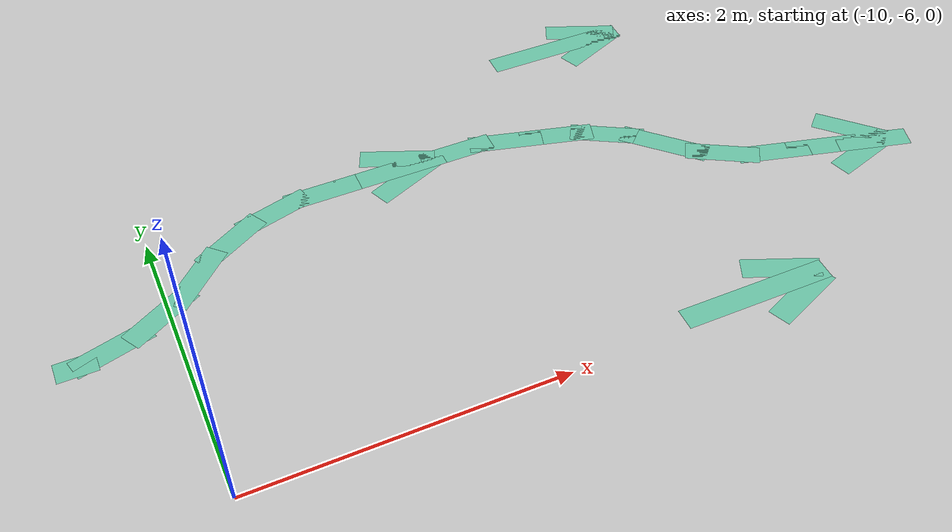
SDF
<sdf version="1.6">
 <world name="default">
  <model name="ground_plane">
   <static>1</static>
   <link name="link">
    <collision name="collision">
     <geometry><plane><normal>0 0 1</normal><size>100 100</size></plane></geometry>
     <surface><friction><ode><mu>100</mu><mu2>50</mu2></ode></friction></surface>
    </collision>
    <visual name="visual">
     <cast_shadows>0</cast_shadows>
     <geometry><plane><normal>0 0 1</normal><size>100 100</size></plane></geometry>
     <material>
      <script><uri>file://media/materials/scripts/gazebo.material</uri><name>Gazebo/Grey</name></script>
     </material>
    </visual>
   </link>
  </model>
  <model name="path_test">
   <link name="Wall_15">
    <pose>-6.00524 0.7938 0 0 -0 0</pose>
    <visual name="Wall_15_Visual">
     <geometry><box><size>0.5 0.15 0</size></box></geometry>
     <material>
      <script><uri>file://media/materials/scripts/gazebo.material</uri><name>Gazebo/Grey</name></script>
      <ambient>0.435294 0.796078 0.67451 1</ambient>
      <shader type="pixel"/>
     </material>
     <meta><layer>0</layer></meta>
    </visual>
    <collision name="Wall_15_Collision">
     <geometry><box><size>0.5 0.15 0</size></box></geometry>
     <surface>
      <friction>
       <ode><mu>1</mu><mu2>1</mu2><fdir1>0 0 0</fdir1><slip1>0</slip1><slip2>0</slip2></ode>
       <torsional>
        <coefficient>1</coefficient>
        <patch_radius>0</patch_radius>
        <surface_radius>0</surface_radius>
        <use_patch_radius>1</use_patch_radius>
        <ode><slip>0</slip></ode>
       </torsional>
      </friction>
      <bounce><restitution_coefficient>0</restitution_coefficient><threshold>1e+06</threshold></bounce>
      <contact>
       <collide_without_contact>0</collide_without_contact>
       <collide_without_contact_bitmask>1</collide_without_contact_bitmask>
       <collide_bitmask>1</collide_bitmask>
       <ode>
        <soft_cfm>0</soft_cfm>
        <soft_erp>0.2</soft_erp>
        <kp>1e+13</kp>
        <kd>1</kd>
        <max_vel>0.01</max_vel>
        <min_depth>0</min_depth>
       </ode>
       <bullet>
        <split_impulse>1</split_impulse>
        <split_impulse_penetration_threshold>-0.01</split_impulse_penetration_threshold>
        <soft_cfm>0</soft_cfm>
        <soft_erp>0.2</soft_erp>
        <kp>1e+13</kp>
        <kd>1</kd>
       </bullet>
      </contact>
     </surface>
    </collision>
   </link>
   <link name="Wall_16">
    <pose>-5.53024 0.7938 0 0 -0 0</pose>
    <visual name="Wall_16_Visual">
     <geometry><box><size>0.75 0.15 0</size></box></geometry>
     <material>
      <script><uri>file://media/materials/scripts/gazebo.material</uri><name>Gazebo/Grey</name></script>
      <ambient>0.435294 0.796078 0.67451 1</ambient>
      <shader type="pixel"/>
     </material>
     <meta><layer>0</layer></meta>
    </visual>
    <collision name="Wall_16_Collision">
     <geometry><box><size>0.75 0.15 0</size></box></geometry>
     <surface>
      <friction>
       <ode><mu>1</mu><mu2>1</mu2><fdir1>0 0 0</fdir1><slip1>0</slip1><slip2>0</slip2></ode>
       <torsional>
        <coefficient>1</coefficient>
        <patch_radius>0</patch_radius>
        <surface_radius>0</surface_radius>
        <use_patch_radius>1</use_patch_radius>
        <ode><slip>0</slip></ode>
       </torsional>
      </friction>
      <bounce><restitution_coefficient>0</restitution_coefficient><threshold>1e+06</threshold></bounce>
      <contact>
       <collide_without_contact>0</collide_without_contact>
       <collide_without_contact_bitmask>1</collide_without_contact_bitmask>
       <collide_bitmask>1</collide_bitmask>
       <ode>
        <soft_cfm>0</soft_cfm>
        <soft_erp>0.2</soft_erp>
        <kp>1e+13</kp>
        <kd>1</kd>
        <max_vel>0.01</max_vel>
        <min_depth>0</min_depth>
       </ode>
       <bullet>
        <split_impulse>1</split_impulse>
        <split_impulse_penetration_threshold>-0.01</split_impulse_penetration_threshold>
        <soft_cfm>0</soft_cfm>
        <soft_erp>0.2</soft_erp>
        <kp>1e+13</kp>
        <kd>1</kd>
       </bullet>
      </contact>
     </surface>
    </collision>
   </link>
   <link name="Wall_17">
    <pose>-5.05524 0.7938 0 0 -0 0</pose>
    <visual name="Wall_17_Visual">
     <geometry><box><size>0.5 0.15 0</size></box></geometry>
     <material>
      <script><uri>file://media/materials/scripts/gazebo.material</uri><name>Gazebo/Grey</name></script>
      <ambient>0.435294 0.796078 0.67451 1</ambient>
      <shader type="pixel"/>
     </material>
     <meta><layer>0</layer></meta>
    </visual>
    <collision name="Wall_17_Collision">
     <geometry><box><size>0.5 0.15 0</size></box></geometry>
     <surface>
      <friction>
       <ode><mu>1</mu><mu2>1</mu2><fdir1>0 0 0</fdir1><slip1>0</slip1><slip2>0</slip2></ode>
       <torsional>
        <coefficient>1</coefficient>
        <patch_radius>0</patch_radius>
        <surface_radius>0</surface_radius>
        <use_patch_radius>1</use_patch_radius>
        <ode><slip>0</slip></ode>
       </torsional>
      </friction>
      <bounce><restitution_coefficient>0</restitution_coefficient><threshold>1e+06</threshold></bounce>
      <contact>
       <collide_without_contact>0</collide_without_contact>
       <collide_without_contact_bitmask>1</collide_without_contact_bitmask>
       <collide_bitmask>1</collide_bitmask>
       <ode>
        <soft_cfm>0</soft_cfm>
        <soft_erp>0.2</soft_erp>
        <kp>1e+13</kp>
        <kd>1</kd>
        <max_vel>0.01</max_vel>
        <min_depth>0</min_depth>
       </ode>
       <bullet>
        <split_impulse>1</split_impulse>
        <split_impulse_penetration_threshold>-0.01</split_impulse_penetration_threshold>
        <soft_cfm>0</soft_cfm>
        <soft_erp>0.2</soft_erp>
        <kp>1e+13</kp>
        <kd>1</kd>
       </bullet>
      </contact>
     </surface>
    </collision>
   </link>
   <link name="Wall_18">
    <pose>-4.7112 0.748507 0 0 0 -0.261799</pose>
    <visual name="Wall_18_Visual">
     <geometry><box><size>0.5 0.15 0</size></box></geometry>
     <material>
      <script><uri>file://media/materials/scripts/gazebo.material</uri><name>Gazebo/Grey</name></script>
      <ambient>0.435294 0.796078 0.67451 1</ambient>
      <shader type="pixel"/>
     </material>
     <meta><layer>0</layer></meta>
    </visual>
    <collision name="Wall_18_Collision">
     <geometry><box><size>0.5 0.15 0</size></box></geometry>
     <surface>
      <friction>
       <ode><mu>1</mu><mu2>1</mu2><fdir1>0 0 0</fdir1><slip1>0</slip1><slip2>0</slip2></ode>
       <torsional>
        <coefficient>1</coefficient>
        <patch_radius>0</patch_radius>
        <surface_radius>0</surface_radius>
        <use_patch_radius>1</use_patch_radius>
        <ode><slip>0</slip></ode>
       </torsional>
      </friction>
      <bounce><restitution_coefficient>0</restitution_coefficient><threshold>1e+06</threshold></bounce>
      <contact>
       <collide_without_contact>0</collide_without_contact>
       <collide_without_contact_bitmask>1</collide_without_contact_bitmask>
       <collide_bitmask>1</collide_bitmask>
       <ode>
        <soft_cfm>0</soft_cfm>
        <soft_erp>0.2</soft_erp>
        <kp>1e+13</kp>
        <kd>1</kd>
        <max_vel>0.01</max_vel>
        <min_depth>0</min_depth>
       </ode>
       <bullet>
        <split_impulse>1</split_impulse>
        <split_impulse_penetration_threshold>-0.01</split_impulse_penetration_threshold>
        <soft_cfm>0</soft_cfm>
        <soft_erp>0.2</soft_erp>
        <kp>1e+13</kp>
        <kd>1</kd>
       </bullet>
      </contact>
     </surface>
    </collision>
   </link>
   <link name="Wall_19">
    <pose>-4.37313 0.65792 0 0 0 -0.261799</pose>
    <visual name="Wall_19_Visual">
     <geometry><box><size>0.5 0.15 0</size></box></geometry>
     <material>
      <script><uri>file://media/materials/scripts/gazebo.material</uri><name>Gazebo/Grey</name></script>
      <ambient>0.435294 0.796078 0.67451 1</ambient>
      <shader type="pixel"/>
     </material>
     <meta><layer>0</layer></meta>
    </visual>
    <collision name="Wall_19_Collision">
     <geometry><box><size>0.5 0.15 0</size></box></geometry>
     <surface>
      <friction>
       <ode><mu>1</mu><mu2>1</mu2><fdir1>0 0 0</fdir1><slip1>0</slip1><slip2>0</slip2></ode>
       <torsional>
        <coefficient>1</coefficient>
        <patch_radius>0</patch_radius>
        <surface_radius>0</surface_radius>
        <use_patch_radius>1</use_patch_radius>
        <ode><slip>0</slip></ode>
       </torsional>
      </friction>
      <bounce><restitution_coefficient>0</restitution_coefficient><threshold>1e+06</threshold></bounce>
      <contact>
       <collide_without_contact>0</collide_without_contact>
       <collide_without_contact_bitmask>1</collide_without_contact_bitmask>
       <collide_bitmask>1</collide_bitmask>
       <ode>
        <soft_cfm>0</soft_cfm>
        <soft_erp>0.2</soft_erp>
        <kp>1e+13</kp>
        <kd>1</kd>
        <max_vel>0.01</max_vel>
        <min_depth>0</min_depth>
       </ode>
       <bullet>
        <split_impulse>1</split_impulse>
        <split_impulse_penetration_threshold>-0.01</split_impulse_penetration_threshold>
        <soft_cfm>0</soft_cfm>
        <soft_erp>0.2</soft_erp>
        <kp>1e+13</kp>
        <kd>1</kd>
       </bullet>
      </contact>
     </surface>
    </collision>
   </link>
   <link name="Wall_20">
    <pose>-4.05254 0.525126 0 0 0 -0.523599</pose>
    <visual name="Wall_20_Visual">
     <geometry><box><size>0.5 0.15 0</size></box></geometry>
     <material>
      <script><uri>file://media/materials/scripts/gazebo.material</uri><name>Gazebo/Grey</name></script>
      <ambient>0.435294 0.796078 0.67451 1</ambient>
      <shader type="pixel"/>
     </material>
     <meta><layer>0</layer></meta>
    </visual>
    <collision name="Wall_20_Collision">
     <geometry><box><size>0.5 0.15 0</size></box></geometry>
     <surface>
      <friction>
       <ode><mu>1</mu><mu2>1</mu2><fdir1>0 0 0</fdir1><slip1>0</slip1><slip2>0</slip2></ode>
       <torsional>
        <coefficient>1</coefficient>
        <patch_radius>0</patch_radius>
        <surface_radius>0</surface_radius>
        <use_patch_radius>1</use_patch_radius>
        <ode><slip>0</slip></ode>
       </torsional>
      </friction>
      <bounce><restitution_coefficient>0</restitution_coefficient><threshold>1e+06</threshold></bounce>
      <contact>
       <collide_without_contact>0</collide_without_contact>
       <collide_without_contact_bitmask>1</collide_without_contact_bitmask>
       <collide_bitmask>1</collide_bitmask>
       <ode>
        <soft_cfm>0</soft_cfm>
        <soft_erp>0.2</soft_erp>
        <kp>1e+13</kp>
        <kd>1</kd>
        <max_vel>0.01</max_vel>
        <min_depth>0</min_depth>
       </ode>
       <bullet>
        <split_impulse>1</split_impulse>
        <split_impulse_penetration_threshold>-0.01</split_impulse_penetration_threshold>
        <soft_cfm>0</soft_cfm>
        <soft_erp>0.2</soft_erp>
        <kp>1e+13</kp>
        <kd>1</kd>
       </bullet>
      </contact>
     </surface>
    </collision>
   </link>
   <link name="Wall_21">
    <pose>-3.86563 0.402271 0 0 0 -0.785398</pose>
    <visual name="Wall_21_Visual">
     <geometry><box><size>0.25 0.15 0</size></box></geometry>
     <material>
      <script><uri>file://media/materials/scripts/gazebo.material</uri><name>Gazebo/Grey</name></script>
      <ambient>0.435294 0.796078 0.67451 1</ambient>
      <shader type="pixel"/>
     </material>
     <meta><layer>0</layer></meta>
    </visual>
    <collision name="Wall_21_Collision">
     <geometry><box><size>0.25 0.15 0</size></box></geometry>
     <surface>
      <friction>
       <ode><mu>1</mu><mu2>1</mu2><fdir1>0 0 0</fdir1><slip1>0</slip1><slip2>0</slip2></ode>
       <torsional>
        <coefficient>1</coefficient>
        <patch_radius>0</patch_radius>
        <surface_radius>0</surface_radius>
        <use_patch_radius>1</use_patch_radius>
        <ode><slip>0</slip></ode>
       </torsional>
      </friction>
      <bounce><restitution_coefficient>0</restitution_coefficient><threshold>1e+06</threshold></bounce>
      <contact>
       <collide_without_contact>0</collide_without_contact>
       <collide_without_contact_bitmask>1</collide_without_contact_bitmask>
       <collide_bitmask>1</collide_bitmask>
       <ode>
        <soft_cfm>0</soft_cfm>
        <soft_erp>0.2</soft_erp>
        <kp>1e+13</kp>
        <kd>1</kd>
        <max_vel>0.01</max_vel>
        <min_depth>0</min_depth>
       </ode>
       <bullet>
        <split_impulse>1</split_impulse>
        <split_impulse_penetration_threshold>-0.01</split_impulse_penetration_threshold>
        <soft_cfm>0</soft_cfm>
        <soft_erp>0.2</soft_erp>
        <kp>1e+13</kp>
        <kd>1</kd>
       </bullet>
      </contact>
     </surface>
    </collision>
   </link>
   <link name="Wall_22">
    <pose>-3.70653 0.243172 0 0 0 -0.785398</pose>
    <visual name="Wall_22_Visual">
     <geometry><box><size>0.5 0.15 0</size></box></geometry>
     <material>
      <script><uri>file://media/materials/scripts/gazebo.material</uri><name>Gazebo/Grey</name></script>
      <ambient>0.435294 0.796078 0.67451 1</ambient>
      <shader type="pixel"/>
     </material>
     <meta><layer>0</layer></meta>
    </visual>
    <collision name="Wall_22_Collision">
     <geometry><box><size>0.5 0.15 0</size></box></geometry>
     <surface>
      <friction>
       <ode><mu>1</mu><mu2>1</mu2><fdir1>0 0 0</fdir1><slip1>0</slip1><slip2>0</slip2></ode>
       <torsional>
        <coefficient>1</coefficient>
        <patch_radius>0</patch_radius>
        <surface_radius>0</surface_radius>
        <use_patch_radius>1</use_patch_radius>
        <ode><slip>0</slip></ode>
       </torsional>
      </friction>
      <bounce><restitution_coefficient>0</restitution_coefficient><threshold>1e+06</threshold></bounce>
      <contact>
       <collide_without_contact>0</collide_without_contact>
       <collide_without_contact_bitmask>1</collide_without_contact_bitmask>
       <collide_bitmask>1</collide_bitmask>
       <ode>
        <soft_cfm>0</soft_cfm>
        <soft_erp>0.2</soft_erp>
        <kp>1e+13</kp>
        <kd>1</kd>
        <max_vel>0.01</max_vel>
        <min_depth>0</min_depth>
       </ode>
       <bullet>
        <split_impulse>1</split_impulse>
        <split_impulse_penetration_threshold>-0.01</split_impulse_penetration_threshold>
        <soft_cfm>0</soft_cfm>
        <soft_erp>0.2</soft_erp>
        <kp>1e+13</kp>
        <kd>1</kd>
       </bullet>
      </contact>
     </surface>
    </collision>
   </link>
   <link name="Wall_23">
    <pose>-3.43123 0.031929 0 0 0 -0.523599</pose>
    <visual name="Wall_23_Visual">
     <geometry><box><size>0.5 0.15 0</size></box></geometry>
     <material>
      <script><uri>file://media/materials/scripts/gazebo.material</uri><name>Gazebo/Grey</name></script>
      <ambient>0.435294 0.796078 0.67451 1</ambient>
      <shader type="pixel"/>
     </material>
     <meta><layer>0</layer></meta>
    </visual>
    <collision name="Wall_23_Collision">
     <geometry><box><size>0.5 0.15 0</size></box></geometry>
     <surface>
      <friction>
       <ode><mu>1</mu><mu2>1</mu2><fdir1>0 0 0</fdir1><slip1>0</slip1><slip2>0</slip2></ode>
       <torsional>
        <coefficient>1</coefficient>
        <patch_radius>0</patch_radius>
        <surface_radius>0</surface_radius>
        <use_patch_radius>1</use_patch_radius>
        <ode><slip>0</slip></ode>
       </torsional>
      </friction>
      <bounce><restitution_coefficient>0</restitution_coefficient><threshold>1e+06</threshold></bounce>
      <contact>
       <collide_without_contact>0</collide_without_contact>
       <collide_without_contact_bitmask>1</collide_without_contact_bitmask>
       <collide_bitmask>1</collide_bitmask>
       <ode>
        <soft_cfm>0</soft_cfm>
        <soft_erp>0.2</soft_erp>
        <kp>1e+13</kp>
        <kd>1</kd>
        <max_vel>0.01</max_vel>
        <min_depth>0</min_depth>
       </ode>
       <bullet>
        <split_impulse>1</split_impulse>
        <split_impulse_penetration_threshold>-0.01</split_impulse_penetration_threshold>
        <soft_cfm>0</soft_cfm>
        <soft_erp>0.2</soft_erp>
        <kp>1e+13</kp>
        <kd>1</kd>
       </bullet>
      </contact>
     </surface>
    </collision>
   </link>
   <link name="Wall_24">
    <pose>-3.11064 -0.100865 0 0 0 -0.261799</pose>
    <visual name="Wall_24_Visual">
     <geometry><box><size>0.5 0.15 0</size></box></geometry>
     <material>
      <script><uri>file://media/materials/scripts/gazebo.material</uri><name>Gazebo/Grey</name></script>
      <ambient>0.435294 0.796078 0.67451 1</ambient>
      <shader type="pixel"/>
     </material>
     <meta><layer>0</layer></meta>
    </visual>
    <collision name="Wall_24_Collision">
     <geometry><box><size>0.5 0.15 0</size></box></geometry>
     <surface>
      <friction>
       <ode><mu>1</mu><mu2>1</mu2><fdir1>0 0 0</fdir1><slip1>0</slip1><slip2>0</slip2></ode>
       <torsional>
        <coefficient>1</coefficient>
        <patch_radius>0</patch_radius>
        <surface_radius>0</surface_radius>
        <use_patch_radius>1</use_patch_radius>
        <ode><slip>0</slip></ode>
       </torsional>
      </friction>
      <bounce><restitution_coefficient>0</restitution_coefficient><threshold>1e+06</threshold></bounce>
      <contact>
       <collide_without_contact>0</collide_without_contact>
       <collide_without_contact_bitmask>1</collide_without_contact_bitmask>
       <collide_bitmask>1</collide_bitmask>
       <ode>
        <soft_cfm>0</soft_cfm>
        <soft_erp>0.2</soft_erp>
        <kp>1e+13</kp>
        <kd>1</kd>
        <max_vel>0.01</max_vel>
        <min_depth>0</min_depth>
       </ode>
       <bullet>
        <split_impulse>1</split_impulse>
        <split_impulse_penetration_threshold>-0.01</split_impulse_penetration_threshold>
        <soft_cfm>0</soft_cfm>
        <soft_erp>0.2</soft_erp>
        <kp>1e+13</kp>
        <kd>1</kd>
       </bullet>
      </contact>
     </surface>
    </collision>
   </link>
   <link name="Wall_25">
    <pose>-2.77256 -0.191452 0 0 0 -0.261799</pose>
    <visual name="Wall_25_Visual">
     <geometry><box><size>0.5 0.15 0</size></box></geometry>
     <material>
      <script><uri>file://media/materials/scripts/gazebo.material</uri><name>Gazebo/Grey</name></script>
      <ambient>0.435294 0.796078 0.67451 1</ambient>
      <shader type="pixel"/>
     </material>
     <meta><layer>0</layer></meta>
    </visual>
    <collision name="Wall_25_Collision">
     <geometry><box><size>0.5 0.15 0</size></box></geometry>
     <surface>
      <friction>
       <ode><mu>1</mu><mu2>1</mu2><fdir1>0 0 0</fdir1><slip1>0</slip1><slip2>0</slip2></ode>
       <torsional>
        <coefficient>1</coefficient>
        <patch_radius>0</patch_radius>
        <surface_radius>0</surface_radius>
        <use_patch_radius>1</use_patch_radius>
        <ode><slip>0</slip></ode>
       </torsional>
      </friction>
      <bounce><restitution_coefficient>0</restitution_coefficient><threshold>1e+06</threshold></bounce>
      <contact>
       <collide_without_contact>0</collide_without_contact>
       <collide_without_contact_bitmask>1</collide_without_contact_bitmask>
       <collide_bitmask>1</collide_bitmask>
       <ode>
        <soft_cfm>0</soft_cfm>
        <soft_erp>0.2</soft_erp>
        <kp>1e+13</kp>
        <kd>1</kd>
        <max_vel>0.01</max_vel>
        <min_depth>0</min_depth>
       </ode>
       <bullet>
        <split_impulse>1</split_impulse>
        <split_impulse_penetration_threshold>-0.01</split_impulse_penetration_threshold>
        <soft_cfm>0</soft_cfm>
        <soft_erp>0.2</soft_erp>
        <kp>1e+13</kp>
        <kd>1</kd>
       </bullet>
      </contact>
     </surface>
    </collision>
   </link>
   <link name="Wall_30_clone_clone">
    <pose>-5.4542 0.690381 0 0 -0 0.4</pose>
    <inertial>
     <mass>1</mass>
     <inertia><ixx>1</ixx><ixy>0</ixy><ixz>0</ixz><iyy>1</iyy><iyz>0</iyz><izz>1</izz></inertia>
    </inertial>
    <visual name="Wall_30_Visual">
     <geometry><box><size>0.5 0.15 0</size></box></geometry>
     <material>
      <script><uri>file://media/materials/scripts/gazebo.material</uri><name>Gazebo/Grey</name></script>
      <ambient>0.435 0.796 0.675 1</ambient>
      <shader type="pixel"><normal_map>__default__</normal_map></shader>
      <diffuse>0.7 0.7 0.7 1</diffuse>
      <specular>0.01 0.01 0.01 1</specular>
      <emissive>0 0 0 1</emissive>
     </material>
     <meta><layer>0</layer></meta>
    </visual>
    <collision name="Wall_30_Collision">
     <geometry><box><size>0.5 0.15 0</size></box></geometry>
     <surface>
      <friction>
       <ode><mu>1</mu><mu2>1</mu2><fdir1>0 0 0</fdir1><slip1>0</slip1><slip2>0</slip2></ode>
       <torsional>
        <coefficient>1</coefficient>
        <patch_radius>0</patch_radius>
        <surface_radius>0</surface_radius>
        <use_patch_radius>1</use_patch_radius>
        <ode><slip>0</slip></ode>
       </torsional>
      </friction>
      <bounce><restitution_coefficient>0</restitution_coefficient><threshold>1e+06</threshold></bounce>
      <contact>
       <collide_without_contact>0</collide_without_contact>
       <collide_without_contact_bitmask>1</collide_without_contact_bitmask>
       <collide_bitmask>1</collide_bitmask>
       <ode>
        <soft_cfm>0</soft_cfm>
        <soft_erp>0.2</soft_erp>
        <kp>1e+13</kp>
        <kd>1</kd>
        <max_vel>0.01</max_vel>
        <min_depth>0</min_depth>
       </ode>
       <bullet>
        <split_impulse>1</split_impulse>
        <split_impulse_penetration_threshold>-0.01</split_impulse_penetration_threshold>
        <soft_cfm>0</soft_cfm>
        <soft_erp>0.2</soft_erp>
        <kp>1e+13</kp>
        <kd>1</kd>
       </bullet>
      </contact>
     </surface>
    </collision>
   </link>
   <link name="Wall_30_clone_clone_0">
    <pose>-5.44614 0.892389 0 0 0 -0.4</pose>
    <inertial>
     <mass>1</mass>
     <inertia><ixx>1</ixx><ixy>0</ixy><ixz>0</ixz><iyy>1</iyy><iyz>0</iyz><izz>1</izz></inertia>
    </inertial>
    <visual name="Wall_30_Visual">
     <geometry><box><size>0.5 0.15 0</size></box></geometry>
     <material>
      <script><uri>file://media/materials/scripts/gazebo.material</uri><name>Gazebo/Grey</name></script>
      <ambient>0.435 0.796 0.675 1</ambient>
      <shader type="pixel"><normal_map>__default__</normal_map></shader>
      <diffuse>0.7 0.7 0.7 1</diffuse>
      <specular>0.01 0.01 0.01 1</specular>
      <emissive>0 0 0 1</emissive>
     </material>
     <meta><layer>0</layer></meta>
    </visual>
    <collision name="Wall_30_Collision">
     <geometry><box><size>0.5 0.15 0</size></box></geometry>
     <surface>
      <friction>
       <ode><mu>1</mu><mu2>1</mu2><fdir1>0 0 0</fdir1><slip1>0</slip1><slip2>0</slip2></ode>
       <torsional>
        <coefficient>1</coefficient>
        <patch_radius>0</patch_radius>
        <surface_radius>0</surface_radius>
        <use_patch_radius>1</use_patch_radius>
        <ode><slip>0</slip></ode>
       </torsional>
      </friction>
      <bounce><restitution_coefficient>0</restitution_coefficient><threshold>1e+06</threshold></bounce>
      <contact>
       <collide_without_contact>0</collide_without_contact>
       <collide_without_contact_bitmask>1</collide_without_contact_bitmask>
       <collide_bitmask>1</collide_bitmask>
       <ode>
        <soft_cfm>0</soft_cfm>
        <soft_erp>0.2</soft_erp>
        <kp>1e+13</kp>
        <kd>1</kd>
        <max_vel>0.01</max_vel>
        <min_depth>0</min_depth>
       </ode>
       <bullet>
        <split_impulse>1</split_impulse>
        <split_impulse_penetration_threshold>-0.01</split_impulse_penetration_threshold>
        <soft_cfm>0</soft_cfm>
        <soft_erp>0.2</soft_erp>
        <kp>1e+13</kp>
        <kd>1</kd>
       </bullet>
      </contact>
     </surface>
    </collision>
   </link>
   <link name="Wall_30_clone_clone_0_clone">
    <pose>-3.7173 1.61571 0 0 0 -0.4</pose>
    <inertial>
     <mass>1</mass>
     <inertia><ixx>1</ixx><ixy>0</ixy><ixz>0</ixz><iyy>1</iyy><iyz>0</iyz><izz>1</izz></inertia>
    </inertial>
    <visual name="Wall_30_Visual">
     <geometry><box><size>0.5 0.15 0</size></box></geometry>
     <material>
      <script><uri>file://media/materials/scripts/gazebo.material</uri><name>Gazebo/Grey</name></script>
      <ambient>0.435 0.796 0.675 1</ambient>
      <shader type="pixel"><normal_map>__default__</normal_map></shader>
      <diffuse>0.7 0.7 0.7 1</diffuse>
      <specular>0.01 0.01 0.01 1</specular>
      <emissive>0 0 0 1</emissive>
     </material>
     <meta><layer>0</layer></meta>
    </visual>
    <collision name="Wall_30_Collision">
     <geometry><box><size>0.5 0.15 0</size></box></geometry>
     <surface>
      <friction>
       <ode><mu>1</mu><mu2>1</mu2><fdir1>0 0 0</fdir1><slip1>0</slip1><slip2>0</slip2></ode>
       <torsional>
        <coefficient>1</coefficient>
        <patch_radius>0</patch_radius>
        <surface_radius>0</surface_radius>
        <use_patch_radius>1</use_patch_radius>
        <ode><slip>0</slip></ode>
       </torsional>
      </friction>
      <bounce><restitution_coefficient>0</restitution_coefficient><threshold>1e+06</threshold></bounce>
      <contact>
       <collide_without_contact>0</collide_without_contact>
       <collide_without_contact_bitmask>1</collide_without_contact_bitmask>
       <collide_bitmask>1</collide_bitmask>
       <ode>
        <soft_cfm>0</soft_cfm>
        <soft_erp>0.2</soft_erp>
        <kp>1e+13</kp>
        <kd>1</kd>
        <max_vel>0.01</max_vel>
        <min_depth>0</min_depth>
       </ode>
       <bullet>
        <split_impulse>1</split_impulse>
        <split_impulse_penetration_threshold>-0.01</split_impulse_penetration_threshold>
        <soft_cfm>0</soft_cfm>
        <soft_erp>0.2</soft_erp>
        <kp>1e+13</kp>
        <kd>1</kd>
       </bullet>
      </contact>
     </surface>
    </collision>
   </link>
   <link name="Wall_30_clone_clone_0_clone_0_clone">
    <pose>-2.5096 -0.121844 0 0 0 -0.8</pose>
    <inertial>
     <mass>1</mass>
     <inertia><ixx>1</ixx><ixy>0</ixy><ixz>0</ixz><iyy>1</iyy><iyz>0</iyz><izz>1</izz></inertia>
    </inertial>
    <visual name="Wall_30_Visual">
     <geometry><box><size>0.5 0.15 0</size></box></geometry>
     <material>
      <script><uri>file://media/materials/scripts/gazebo.material</uri><name>Gazebo/Grey</name></script>
      <ambient>0.435 0.796 0.675 1</ambient>
      <shader type="pixel"><normal_map>__default__</normal_map></shader>
      <diffuse>0.7 0.7 0.7 1</diffuse>
      <specular>0.01 0.01 0.01 1</specular>
      <emissive>0 0 0 1</emissive>
     </material>
     <meta><layer>0</layer></meta>
    </visual>
    <collision name="Wall_30_Collision">
     <geometry><box><size>0.5 0.15 0</size></box></geometry>
     <surface>
      <friction>
       <ode><mu>1</mu><mu2>1</mu2><fdir1>0 0 0</fdir1><slip1>0</slip1><slip2>0</slip2></ode>
       <torsional>
        <coefficient>1</coefficient>
        <patch_radius>0</patch_radius>
        <surface_radius>0</surface_radius>
        <use_patch_radius>1</use_patch_radius>
        <ode><slip>0</slip></ode>
       </torsional>
      </friction>
      <bounce><restitution_coefficient>0</restitution_coefficient><threshold>1e+06</threshold></bounce>
      <contact>
       <collide_without_contact>0</collide_without_contact>
       <collide_without_contact_bitmask>1</collide_without_contact_bitmask>
       <collide_bitmask>1</collide_bitmask>
       <ode>
        <soft_cfm>0</soft_cfm>
        <soft_erp>0.2</soft_erp>
        <kp>1e+13</kp>
        <kd>1</kd>
        <max_vel>0.01</max_vel>
        <min_depth>0</min_depth>
       </ode>
       <bullet>
        <split_impulse>1</split_impulse>
        <split_impulse_penetration_threshold>-0.01</split_impulse_penetration_threshold>
        <soft_cfm>0</soft_cfm>
        <soft_erp>0.2</soft_erp>
        <kp>1e+13</kp>
        <kd>1</kd>
       </bullet>
      </contact>
     </surface>
    </collision>
   </link>
   <link name="Wall_30_clone_clone_0_clone_0_clone_0">
    <pose>-2.55941 -0.352224 0 0 -0 0.3</pose>
    <inertial>
     <mass>1</mass>
     <inertia><ixx>1</ixx><ixy>0</ixy><ixz>0</ixz><iyy>1</iyy><iyz>0</iyz><izz>1</izz></inertia>
    </inertial>
    <visual name="Wall_30_Visual">
     <geometry><box><size>0.5 0.15 0</size></box></geometry>
     <material>
      <script><uri>file://media/materials/scripts/gazebo.material</uri><name>Gazebo/Grey</name></script>
      <ambient>0.435 0.796 0.675 1</ambient>
      <shader type="pixel"><normal_map>__default__</normal_map></shader>
      <diffuse>0.7 0.7 0.7 1</diffuse>
      <specular>0.01 0.01 0.01 1</specular>
      <emissive>0 0 0 1</emissive>
     </material>
     <meta><layer>0</layer></meta>
    </visual>
    <collision name="Wall_30_Collision">
     <geometry><box><size>0.5 0.15 0</size></box></geometry>
     <surface>
      <friction>
       <ode><mu>1</mu><mu2>1</mu2><fdir1>0 0 0</fdir1><slip1>0</slip1><slip2>0</slip2></ode>
       <torsional>
        <coefficient>1</coefficient>
        <patch_radius>0</patch_radius>
        <surface_radius>0</surface_radius>
        <use_patch_radius>1</use_patch_radius>
        <ode><slip>0</slip></ode>
       </torsional>
      </friction>
      <bounce><restitution_coefficient>0</restitution_coefficient><threshold>1e+06</threshold></bounce>
      <contact>
       <collide_without_contact>0</collide_without_contact>
       <collide_without_contact_bitmask>1</collide_without_contact_bitmask>
       <collide_bitmask>1</collide_bitmask>
       <ode>
        <soft_cfm>0</soft_cfm>
        <soft_erp>0.2</soft_erp>
        <kp>1e+13</kp>
        <kd>1</kd>
        <max_vel>0.01</max_vel>
        <min_depth>0</min_depth>
       </ode>
       <bullet>
        <split_impulse>1</split_impulse>
        <split_impulse_penetration_threshold>-0.01</split_impulse_penetration_threshold>
        <soft_cfm>0</soft_cfm>
        <soft_erp>0.2</soft_erp>
        <kp>1e+13</kp>
        <kd>1</kd>
       </bullet>
      </contact>
     </surface>
    </collision>
   </link>
   <link name="Wall_30_clone_clone_0_clone_clone">
    <pose>-3.6409 -1.02093 0 0 0 -0.4</pose>
    <inertial>
     <mass>1</mass>
     <inertia><ixx>1</ixx><ixy>0</ixy><ixz>0</ixz><iyy>1</iyy><iyz>0</iyz><izz>1</izz></inertia>
    </inertial>
    <visual name="Wall_30_Visual">
     <geometry><box><size>0.5 0.15 0</size></box></geometry>
     <material>
      <script><uri>file://media/materials/scripts/gazebo.material</uri><name>Gazebo/Grey</name></script>
      <ambient>0.435 0.796 0.675 1</ambient>
      <shader type="pixel"><normal_map>__default__</normal_map></shader>
      <diffuse>0.7 0.7 0.7 1</diffuse>
      <specular>0.01 0.01 0.01 1</specular>
      <emissive>0 0 0 1</emissive>
     </material>
     <meta><layer>0</layer></meta>
    </visual>
    <collision name="Wall_30_Collision">
     <geometry><box><size>0.5 0.15 0</size></box></geometry>
     <surface>
      <friction>
       <ode><mu>1</mu><mu2>1</mu2><fdir1>0 0 0</fdir1><slip1>0</slip1><slip2>0</slip2></ode>
       <torsional>
        <coefficient>1</coefficient>
        <patch_radius>0</patch_radius>
        <surface_radius>0</surface_radius>
        <use_patch_radius>1</use_patch_radius>
        <ode><slip>0</slip></ode>
       </torsional>
      </friction>
      <bounce><restitution_coefficient>0</restitution_coefficient><threshold>1e+06</threshold></bounce>
      <contact>
       <collide_without_contact>0</collide_without_contact>
       <collide_without_contact_bitmask>1</collide_without_contact_bitmask>
       <collide_bitmask>1</collide_bitmask>
       <ode>
        <soft_cfm>0</soft_cfm>
        <soft_erp>0.2</soft_erp>
        <kp>1e+13</kp>
        <kd>1</kd>
        <max_vel>0.01</max_vel>
        <min_depth>0</min_depth>
       </ode>
       <bullet>
        <split_impulse>1</split_impulse>
        <split_impulse_penetration_threshold>-0.01</split_impulse_penetration_threshold>
        <soft_cfm>0</soft_cfm>
        <soft_erp>0.2</soft_erp>
        <kp>1e+13</kp>
        <kd>1</kd>
       </bullet>
      </contact>
     </surface>
    </collision>
   </link>
   <link name="Wall_30_clone_clone_clone">
    <pose>-3.71431 1.43375 0 0 -0 0.4</pose>
    <inertial>
     <mass>1</mass>
     <inertia><ixx>1</ixx><ixy>0</ixy><ixz>0</ixz><iyy>1</iyy><iyz>0</iyz><izz>1</izz></inertia>
    </inertial>
    <visual name="Wall_30_Visual">
     <geometry><box><size>0.5 0.15 0</size></box></geometry>
     <material>
      <script><uri>file://media/materials/scripts/gazebo.material</uri><name>Gazebo/Grey</name></script>
      <ambient>0.435 0.796 0.675 1</ambient>
      <shader type="pixel"><normal_map>__default__</normal_map></shader>
      <diffuse>0.7 0.7 0.7 1</diffuse>
      <specular>0.01 0.01 0.01 1</specular>
      <emissive>0 0 0 1</emissive>
     </material>
     <meta><layer>0</layer></meta>
    </visual>
    <collision name="Wall_30_Collision">
     <geometry><box><size>0.5 0.15 0</size></box></geometry>
     <surface>
      <friction>
       <ode><mu>1</mu><mu2>1</mu2><fdir1>0 0 0</fdir1><slip1>0</slip1><slip2>0</slip2></ode>
       <torsional>
        <coefficient>1</coefficient>
        <patch_radius>0</patch_radius>
        <surface_radius>0</surface_radius>
        <use_patch_radius>1</use_patch_radius>
        <ode><slip>0</slip></ode>
       </torsional>
      </friction>
      <bounce><restitution_coefficient>0</restitution_coefficient><threshold>1e+06</threshold></bounce>
      <contact>
       <collide_without_contact>0</collide_without_contact>
       <collide_without_contact_bitmask>1</collide_without_contact_bitmask>
       <collide_bitmask>1</collide_bitmask>
       <ode>
        <soft_cfm>0</soft_cfm>
        <soft_erp>0.2</soft_erp>
        <kp>1e+13</kp>
        <kd>1</kd>
        <max_vel>0.01</max_vel>
        <min_depth>0</min_depth>
       </ode>
       <bullet>
        <split_impulse>1</split_impulse>
        <split_impulse_penetration_threshold>-0.01</split_impulse_penetration_threshold>
        <soft_cfm>0</soft_cfm>
        <soft_erp>0.2</soft_erp>
        <kp>1e+13</kp>
        <kd>1</kd>
       </bullet>
      </contact>
     </surface>
    </collision>
   </link>
   <link name="Wall_30_clone_clone_clone_clone">
    <pose>-3.642 -1.2623 0 0 -0 0.4</pose>
    <inertial>
     <mass>1</mass>
     <inertia><ixx>1</ixx><ixy>0</ixy><ixz>0</ixz><iyy>1</iyy><iyz>0</iyz><izz>1</izz></inertia>
    </inertial>
    <visual name="Wall_30_Visual">
     <geometry><box><size>0.5 0.15 0</size></box></geometry>
     <material>
      <script><uri>file://media/materials/scripts/gazebo.material</uri><name>Gazebo/Grey</name></script>
      <ambient>0.435 0.796 0.675 1</ambient>
      <shader type="pixel"><normal_map>__default__</normal_map></shader>
      <diffuse>0.7 0.7 0.7 1</diffuse>
      <specular>0.01 0.01 0.01 1</specular>
      <emissive>0 0 0 1</emissive>
     </material>
     <meta><layer>0</layer></meta>
    </visual>
    <collision name="Wall_30_Collision">
     <geometry><box><size>0.5 0.15 0</size></box></geometry>
     <surface>
      <friction>
       <ode><mu>1</mu><mu2>1</mu2><fdir1>0 0 0</fdir1><slip1>0</slip1><slip2>0</slip2></ode>
       <torsional>
        <coefficient>1</coefficient>
        <patch_radius>0</patch_radius>
        <surface_radius>0</surface_radius>
        <use_patch_radius>1</use_patch_radius>
        <ode><slip>0</slip></ode>
       </torsional>
      </friction>
      <bounce><restitution_coefficient>0</restitution_coefficient><threshold>1e+06</threshold></bounce>
      <contact>
       <collide_without_contact>0</collide_without_contact>
       <collide_without_contact_bitmask>1</collide_without_contact_bitmask>
       <collide_bitmask>1</collide_bitmask>
       <ode>
        <soft_cfm>0</soft_cfm>
        <soft_erp>0.2</soft_erp>
        <kp>1e+13</kp>
        <kd>1</kd>
        <max_vel>0.01</max_vel>
        <min_depth>0</min_depth>
       </ode>
       <bullet>
        <split_impulse>1</split_impulse>
        <split_impulse_penetration_threshold>-0.01</split_impulse_penetration_threshold>
        <soft_cfm>0</soft_cfm>
        <soft_erp>0.2</soft_erp>
        <kp>1e+13</kp>
        <kd>1</kd>
       </bullet>
      </contact>
     </surface>
    </collision>
   </link>
   <link name="Wall_34_clone">
    <pose>-3.96164 1.52209 0 0 -0 0</pose>
    <visual name="Wall_34_Visual">
     <geometry><box><size>1 0.15 0</size></box></geometry>
     <material>
      <script><uri>file://media/materials/scripts/gazebo.material</uri><name>Gazebo/Grey</name></script>
      <ambient>0.435294 0.796078 0.67451 1</ambient>
      <shader type="pixel"/>
     </material>
     <meta><layer>0</layer></meta>
    </visual>
    <collision name="Wall_34_Collision">
     <geometry><box><size>1 0.15 0</size></box></geometry>
     <surface>
      <friction>
       <ode><mu>1</mu><mu2>1</mu2><fdir1>0 0 0</fdir1><slip1>0</slip1><slip2>0</slip2></ode>
       <torsional>
        <coefficient>1</coefficient>
        <patch_radius>0</patch_radius>
        <surface_radius>0</surface_radius>
        <use_patch_radius>1</use_patch_radius>
        <ode><slip>0</slip></ode>
       </torsional>
      </friction>
      <bounce><restitution_coefficient>0</restitution_coefficient><threshold>1e+06</threshold></bounce>
      <contact>
       <collide_without_contact>0</collide_without_contact>
       <collide_without_contact_bitmask>1</collide_without_contact_bitmask>
       <collide_bitmask>1</collide_bitmask>
       <ode>
        <soft_cfm>0</soft_cfm>
        <soft_erp>0.2</soft_erp>
        <kp>1e+13</kp>
        <kd>1</kd>
        <max_vel>0.01</max_vel>
        <min_depth>0</min_depth>
       </ode>
       <bullet>
        <split_impulse>1</split_impulse>
        <split_impulse_penetration_threshold>-0.01</split_impulse_penetration_threshold>
        <soft_cfm>0</soft_cfm>
        <soft_erp>0.2</soft_erp>
        <kp>1e+13</kp>
        <kd>1</kd>
       </bullet>
      </contact>
     </surface>
    </collision>
   </link>
   <link name="Wall_34_clone_clone">
    <pose>-3.89159 -1.13631 0 0 -0 0</pose>
    <visual name="Wall_34_Visual">
     <geometry><box><size>1 0.15 0</size></box></geometry>
     <material>
      <script><uri>file://media/materials/scripts/gazebo.material</uri><name>Gazebo/Grey</name></script>
      <ambient>0.435294 0.796078 0.67451 1</ambient>
      <shader type="pixel"/>
     </material>
     <meta><layer>0</layer></meta>
    </visual>
    <collision name="Wall_34_Collision">
     <geometry><box><size>1 0.15 0</size></box></geometry>
     <surface>
      <friction>
       <ode><mu>1</mu><mu2>1</mu2><fdir1>0 0 0</fdir1><slip1>0</slip1><slip2>0</slip2></ode>
       <torsional>
        <coefficient>1</coefficient>
        <patch_radius>0</patch_radius>
        <surface_radius>0</surface_radius>
        <use_patch_radius>1</use_patch_radius>
        <ode><slip>0</slip></ode>
       </torsional>
      </friction>
      <bounce><restitution_coefficient>0</restitution_coefficient><threshold>1e+06</threshold></bounce>
      <contact>
       <collide_without_contact>0</collide_without_contact>
       <collide_without_contact_bitmask>1</collide_without_contact_bitmask>
       <collide_bitmask>1</collide_bitmask>
       <ode>
        <soft_cfm>0</soft_cfm>
        <soft_erp>0.2</soft_erp>
        <kp>1e+13</kp>
        <kd>1</kd>
        <max_vel>0.01</max_vel>
        <min_depth>0</min_depth>
       </ode>
       <bullet>
        <split_impulse>1</split_impulse>
        <split_impulse_penetration_threshold>-0.01</split_impulse_penetration_threshold>
        <soft_cfm>0</soft_cfm>
        <soft_erp>0.2</soft_erp>
        <kp>1e+13</kp>
        <kd>1</kd>
       </bullet>
      </contact>
     </surface>
    </collision>
   </link>
   <link name="Wall_53">
    <pose>-6.34928 0.748507 0 0 0 -2.87979</pose>
    <visual name="Wall_53_Visual">
     <geometry><box><size>0.5 0.15 0</size></box></geometry>
     <material>
      <script><uri>file://media/materials/scripts/gazebo.material</uri><name>Gazebo/Grey</name></script>
      <ambient>0.435294 0.796078 0.67451 1</ambient>
      <shader type="pixel"/>
     </material>
     <meta><layer>0</layer></meta>
    </visual>
    <collision name="Wall_53_Collision">
     <geometry><box><size>0.5 0.15 0</size></box></geometry>
     <surface>
      <friction>
       <ode><mu>1</mu><mu2>1</mu2><fdir1>0 0 0</fdir1><slip1>0</slip1><slip2>0</slip2></ode>
       <torsional>
        <coefficient>1</coefficient>
        <patch_radius>0</patch_radius>
        <surface_radius>0</surface_radius>
        <use_patch_radius>1</use_patch_radius>
        <ode><slip>0</slip></ode>
       </torsional>
      </friction>
      <bounce><restitution_coefficient>0</restitution_coefficient><threshold>1e+06</threshold></bounce>
      <contact>
       <collide_without_contact>0</collide_without_contact>
       <collide_without_contact_bitmask>1</collide_without_contact_bitmask>
       <collide_bitmask>1</collide_bitmask>
       <ode>
        <soft_cfm>0</soft_cfm>
        <soft_erp>0.2</soft_erp>
        <kp>1e+13</kp>
        <kd>1</kd>
        <max_vel>0.01</max_vel>
        <min_depth>0</min_depth>
       </ode>
       <bullet>
        <split_impulse>1</split_impulse>
        <split_impulse_penetration_threshold>-0.01</split_impulse_penetration_threshold>
        <soft_cfm>0</soft_cfm>
        <soft_erp>0.2</soft_erp>
        <kp>1e+13</kp>
        <kd>1</kd>
       </bullet>
      </contact>
     </surface>
    </collision>
   </link>
   <link name="Wall_54">
    <pose>-6.66987 0.615713 0 0 0 -2.61799</pose>
    <visual name="Wall_54_Visual">
     <geometry><box><size>0.5 0.15 0</size></box></geometry>
     <material>
      <script><uri>file://media/materials/scripts/gazebo.material</uri><name>Gazebo/Grey</name></script>
      <ambient>0.435294 0.796078 0.67451 1</ambient>
      <shader type="pixel"/>
     </material>
     <meta><layer>0</layer></meta>
    </visual>
    <collision name="Wall_54_Collision">
     <geometry><box><size>0.5 0.15 0</size></box></geometry>
     <surface>
      <friction>
       <ode><mu>1</mu><mu2>1</mu2><fdir1>0 0 0</fdir1><slip1>0</slip1><slip2>0</slip2></ode>
       <torsional>
        <coefficient>1</coefficient>
        <patch_radius>0</patch_radius>
        <surface_radius>0</surface_radius>
        <use_patch_radius>1</use_patch_radius>
        <ode><slip>0</slip></ode>
       </torsional>
      </friction>
      <bounce><restitution_coefficient>0</restitution_coefficient><threshold>1e+06</threshold></bounce>
      <contact>
       <collide_without_contact>0</collide_without_contact>
       <collide_without_contact_bitmask>1</collide_without_contact_bitmask>
       <collide_bitmask>1</collide_bitmask>
       <ode>
        <soft_cfm>0</soft_cfm>
        <soft_erp>0.2</soft_erp>
        <kp>1e+13</kp>
        <kd>1</kd>
        <max_vel>0.01</max_vel>
        <min_depth>0</min_depth>
       </ode>
       <bullet>
        <split_impulse>1</split_impulse>
        <split_impulse_penetration_threshold>-0.01</split_impulse_penetration_threshold>
        <soft_cfm>0</soft_cfm>
        <soft_erp>0.2</soft_erp>
        <kp>1e+13</kp>
        <kd>1</kd>
       </bullet>
      </contact>
     </surface>
    </collision>
   </link>
   <link name="Wall_55">
    <pose>-6.94517 0.404469 0 0 0 -2.35619</pose>
    <visual name="Wall_55_Visual">
     <geometry><box><size>0.5 0.15 0</size></box></geometry>
     <material>
      <script><uri>file://media/materials/scripts/gazebo.material</uri><name>Gazebo/Grey</name></script>
      <ambient>0.435294 0.796078 0.67451 1</ambient>
      <shader type="pixel"/>
     </material>
     <meta><layer>0</layer></meta>
    </visual>
    <collision name="Wall_55_Collision">
     <geometry><box><size>0.5 0.15 0</size></box></geometry>
     <surface>
      <friction>
       <ode><mu>1</mu><mu2>1</mu2><fdir1>0 0 0</fdir1><slip1>0</slip1><slip2>0</slip2></ode>
       <torsional>
        <coefficient>1</coefficient>
        <patch_radius>0</patch_radius>
        <surface_radius>0</surface_radius>
        <use_patch_radius>1</use_patch_radius>
        <ode><slip>0</slip></ode>
       </torsional>
      </friction>
      <bounce><restitution_coefficient>0</restitution_coefficient><threshold>1e+06</threshold></bounce>
      <contact>
       <collide_without_contact>0</collide_without_contact>
       <collide_without_contact_bitmask>1</collide_without_contact_bitmask>
       <collide_bitmask>1</collide_bitmask>
       <ode>
        <soft_cfm>0</soft_cfm>
        <soft_erp>0.2</soft_erp>
        <kp>1e+13</kp>
        <kd>1</kd>
        <max_vel>0.01</max_vel>
        <min_depth>0</min_depth>
       </ode>
       <bullet>
        <split_impulse>1</split_impulse>
        <split_impulse_penetration_threshold>-0.01</split_impulse_penetration_threshold>
        <soft_cfm>0</soft_cfm>
        <soft_erp>0.2</soft_erp>
        <kp>1e+13</kp>
        <kd>1</kd>
       </bullet>
      </contact>
     </surface>
    </collision>
   </link>
   <link name="Wall_58">
    <pose>-7.22046 0.193226 0 0 0 -2.61799</pose>
    <visual name="Wall_58_Visual">
     <geometry><box><size>0.5 0.15 0</size></box></geometry>
     <material>
      <script><uri>file://media/materials/scripts/gazebo.material</uri><name>Gazebo/Grey</name></script>
      <ambient>0.435294 0.796078 0.67451 1</ambient>
      <shader type="pixel"/>
     </material>
     <meta><layer>0</layer></meta>
    </visual>
    <collision name="Wall_58_Collision">
     <geometry><box><size>0.5 0.15 0</size></box></geometry>
     <surface>
      <friction>
       <ode><mu>1</mu><mu2>1</mu2><fdir1>0 0 0</fdir1><slip1>0</slip1><slip2>0</slip2></ode>
       <torsional>
        <coefficient>1</coefficient>
        <patch_radius>0</patch_radius>
        <surface_radius>0</surface_radius>
        <use_patch_radius>1</use_patch_radius>
        <ode><slip>0</slip></ode>
       </torsional>
      </friction>
      <bounce><restitution_coefficient>0</restitution_coefficient><threshold>1e+06</threshold></bounce>
      <contact>
       <collide_without_contact>0</collide_without_contact>
       <collide_without_contact_bitmask>1</collide_without_contact_bitmask>
       <collide_bitmask>1</collide_bitmask>
       <ode>
        <soft_cfm>0</soft_cfm>
        <soft_erp>0.2</soft_erp>
        <kp>1e+13</kp>
        <kd>1</kd>
        <max_vel>0.01</max_vel>
        <min_depth>0</min_depth>
       </ode>
       <bullet>
        <split_impulse>1</split_impulse>
        <split_impulse_penetration_threshold>-0.01</split_impulse_penetration_threshold>
        <soft_cfm>0</soft_cfm>
        <soft_erp>0.2</soft_erp>
        <kp>1e+13</kp>
        <kd>1</kd>
       </bullet>
      </contact>
     </surface>
    </collision>
   </link>
   <link name="Wall_59">
    <pose>-7.54106 0.060432 0 0 0 -2.87979</pose>
    <visual name="Wall_59_Visual">
     <geometry><box><size>0.5 0.15 0</size></box></geometry>
     <material>
      <script><uri>file://media/materials/scripts/gazebo.material</uri><name>Gazebo/Grey</name></script>
      <ambient>0.435294 0.796078 0.67451 1</ambient>
      <shader type="pixel"/>
     </material>
     <meta><layer>0</layer></meta>
    </visual>
    <collision name="Wall_59_Collision">
     <geometry><box><size>0.5 0.15 0</size></box></geometry>
     <surface>
      <friction>
       <ode><mu>1</mu><mu2>1</mu2><fdir1>0 0 0</fdir1><slip1>0</slip1><slip2>0</slip2></ode>
       <torsional>
        <coefficient>1</coefficient>
        <patch_radius>0</patch_radius>
        <surface_radius>0</surface_radius>
        <use_patch_radius>1</use_patch_radius>
        <ode><slip>0</slip></ode>
       </torsional>
      </friction>
      <bounce><restitution_coefficient>0</restitution_coefficient><threshold>1e+06</threshold></bounce>
      <contact>
       <collide_without_contact>0</collide_without_contact>
       <collide_without_contact_bitmask>1</collide_without_contact_bitmask>
       <collide_bitmask>1</collide_bitmask>
       <ode>
        <soft_cfm>0</soft_cfm>
        <soft_erp>0.2</soft_erp>
        <kp>1e+13</kp>
        <kd>1</kd>
        <max_vel>0.01</max_vel>
        <min_depth>0</min_depth>
       </ode>
       <bullet>
        <split_impulse>1</split_impulse>
        <split_impulse_penetration_threshold>-0.01</split_impulse_penetration_threshold>
        <soft_cfm>0</soft_cfm>
        <soft_erp>0.2</soft_erp>
        <kp>1e+13</kp>
        <kd>1</kd>
       </bullet>
      </contact>
     </surface>
    </collision>
   </link>
   <link name="Wall_60">
    <pose>-7.76009 0.015139 0 0 -0 3.14159</pose>
    <visual name="Wall_60_Visual">
     <geometry><box><size>0.25 0.15 0</size></box></geometry>
     <material>
      <script><uri>file://media/materials/scripts/gazebo.material</uri><name>Gazebo/Grey</name></script>
      <ambient>0.435294 0.796078 0.67451 1</ambient>
      <shader type="pixel"/>
     </material>
     <meta><layer>0</layer></meta>
    </visual>
    <collision name="Wall_60_Collision">
     <geometry><box><size>0.25 0.15 0</size></box></geometry>
     <surface>
      <friction>
       <ode><mu>1</mu><mu2>1</mu2><fdir1>0 0 0</fdir1><slip1>0</slip1><slip2>0</slip2></ode>
       <torsional>
        <coefficient>1</coefficient>
        <patch_radius>0</patch_radius>
        <surface_radius>0</surface_radius>
        <use_patch_radius>1</use_patch_radius>
        <ode><slip>0</slip></ode>
       </torsional>
      </friction>
      <bounce><restitution_coefficient>0</restitution_coefficient><threshold>1e+06</threshold></bounce>
      <contact>
       <collide_without_contact>0</collide_without_contact>
       <collide_without_contact_bitmask>1</collide_without_contact_bitmask>
       <collide_bitmask>1</collide_bitmask>
       <ode>
        <soft_cfm>0</soft_cfm>
        <soft_erp>0.2</soft_erp>
        <kp>1e+13</kp>
        <kd>1</kd>
        <max_vel>0.01</max_vel>
        <min_depth>0</min_depth>
       </ode>
       <bullet>
        <split_impulse>1</split_impulse>
        <split_impulse_penetration_threshold>-0.01</split_impulse_penetration_threshold>
        <soft_cfm>0</soft_cfm>
        <soft_erp>0.2</soft_erp>
        <kp>1e+13</kp>
        <kd>1</kd>
       </bullet>
      </contact>
     </surface>
    </collision>
   </link>
   <link name="Wall_62">
    <pose>-2.43449 -0.282038 0 0 0 -0.261799</pose>
    <visual name="Wall_62_Visual">
     <geometry><box><size>0.5 0.15 0</size></box></geometry>
     <material>
      <script><uri>file://media/materials/scripts/gazebo.material</uri><name>Gazebo/Grey</name></script>
      <ambient>0.435294 0.796078 0.67451 1</ambient>
      <shader type="pixel"/>
     </material>
     <meta><layer>0</layer></meta>
    </visual>
    <collision name="Wall_62_Collision">
     <geometry><box><size>0.5 0.15 0</size></box></geometry>
     <surface>
      <friction>
       <ode><mu>1</mu><mu2>1</mu2><fdir1>0 0 0</fdir1><slip1>0</slip1><slip2>0</slip2></ode>
       <torsional>
        <coefficient>1</coefficient>
        <patch_radius>0</patch_radius>
        <surface_radius>0</surface_radius>
        <use_patch_radius>1</use_patch_radius>
        <ode><slip>0</slip></ode>
       </torsional>
      </friction>
      <bounce><restitution_coefficient>0</restitution_coefficient><threshold>1e+06</threshold></bounce>
      <contact>
       <collide_without_contact>0</collide_without_contact>
       <collide_without_contact_bitmask>1</collide_without_contact_bitmask>
       <collide_bitmask>1</collide_bitmask>
       <ode>
        <soft_cfm>0</soft_cfm>
        <soft_erp>0.2</soft_erp>
        <kp>1e+13</kp>
        <kd>1</kd>
        <max_vel>0.01</max_vel>
        <min_depth>0</min_depth>
       </ode>
       <bullet>
        <split_impulse>1</split_impulse>
        <split_impulse_penetration_threshold>-0.01</split_impulse_penetration_threshold>
        <soft_cfm>0</soft_cfm>
        <soft_erp>0.2</soft_erp>
        <kp>1e+13</kp>
        <kd>1</kd>
       </bullet>
      </contact>
     </surface>
    </collision>
   </link>
   <static>1</static>
   <pose>-2.83262 -4.78981 0.001 0 -0 0</pose>
  </model>
 </world>
</sdf>
